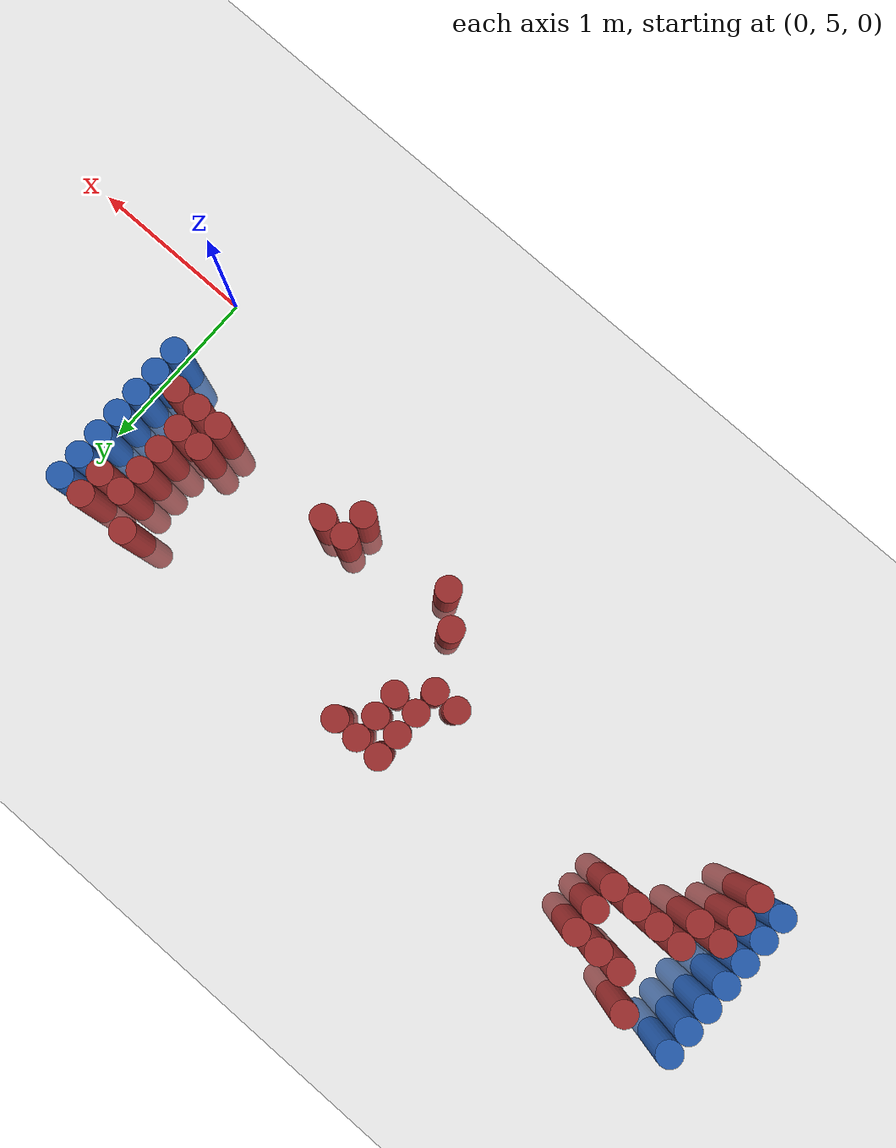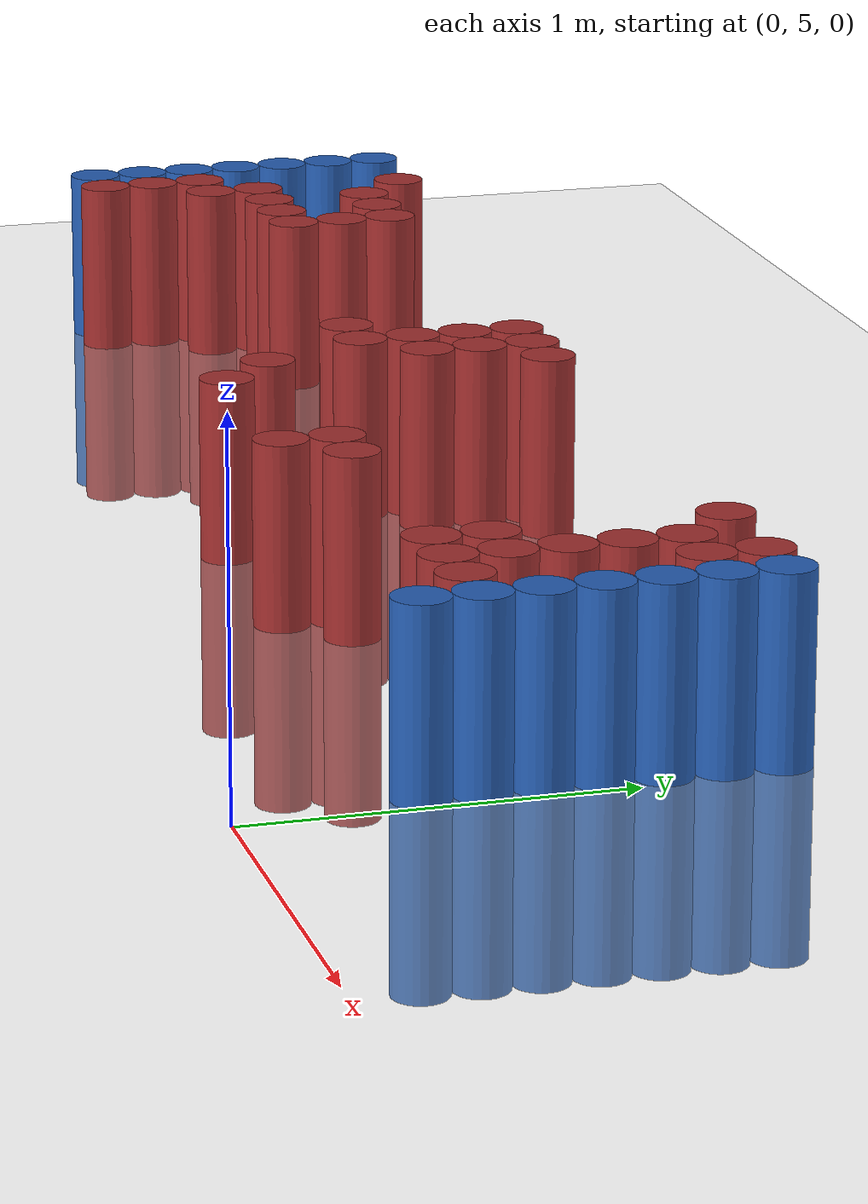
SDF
<sdf version="1.6">
 <world name="default">
  <model name="ground_plane">
   <static>1</static>
   <link name="link">
    <collision name="collision">
     <geometry><plane><normal>0 0 1</normal><size>100 100</size></plane></geometry>
     <surface><friction><ode><mu>100</mu><mu2>50</mu2></ode></friction></surface>
    </collision>
    <visual name="visual">
     <cast_shadows>0</cast_shadows>
     <geometry><plane><normal>0 0 1</normal><size>100 100</size></plane></geometry>
     <material>
      <script><uri>file://media/materials/scripts/gazebo.material</uri><name>Gazebo/Grey</name></script>
     </material>
    </visual>
   </link>
  </model>
  <model name="unit_cylinder_99">
   <static>1</static>
   <pose>-4.425000 5.625000 0.000000 0.000000 0.000000 0.000000</pose>
   <link name="link">
    <inertial>
     <mass>1</mass>
     <inertia><ixx>0.145833</ixx><ixy>0</ixy><ixz>0</ixz><iyy>0.145833</iyy><iyz>0</iyz><izz>0.125</izz></inertia>
    </inertial>
    <collision name="collision">
     <geometry><cylinder><radius>0.075000</radius><length>1</length></cylinder></geometry>
    </collision>
    <visual name="visual">
     <geometry><cylinder><radius>0.075000</radius><length>1</length></cylinder></geometry>
     <material>
      <ambient>0.152000 0.379000 0.720000 1</ambient>
      <diffuse>0.152000 0.379000 0.720000 1</diffuse>
     </material>
     <material>
      <script><name>Gazebo/Grey</name><uri>file://media/materials/scripts/gazebo.material</uri></script>
     </material>
    </visual>
   </link>
  </model>
  <model name="unit_cylinder_100">
   <static>1</static>
   <pose>-4.425000 5.775000 0.000000 0.000000 0.000000 0.000000</pose>
   <link name="link">
    <inertial>
     <mass>1</mass>
     <inertia><ixx>0.145833</ixx><ixy>0</ixy><ixz>0</ixz><iyy>0.145833</iyy><iyz>0</iyz><izz>0.125</izz></inertia>
    </inertial>
    <collision name="collision">
     <geometry><cylinder><radius>0.075000</radius><length>1</length></cylinder></geometry>
    </collision>
    <visual name="visual">
     <geometry><cylinder><radius>0.075000</radius><length>1</length></cylinder></geometry>
     <material>
      <ambient>0.152000 0.379000 0.720000 1</ambient>
      <diffuse>0.152000 0.379000 0.720000 1</diffuse>
     </material>
     <material>
      <script><name>Gazebo/Grey</name><uri>file://media/materials/scripts/gazebo.material</uri></script>
     </material>
    </visual>
   </link>
  </model>
  <model name="unit_cylinder_101">
   <static>1</static>
   <pose>-4.425000 5.925000 0.000000 0.000000 0.000000 0.000000</pose>
   <link name="link">
    <inertial>
     <mass>1</mass>
     <inertia><ixx>0.145833</ixx><ixy>0</ixy><ixz>0</ixz><iyy>0.145833</iyy><iyz>0</iyz><izz>0.125</izz></inertia>
    </inertial>
    <collision name="collision">
     <geometry><cylinder><radius>0.075000</radius><length>1</length></cylinder></geometry>
    </collision>
    <visual name="visual">
     <geometry><cylinder><radius>0.075000</radius><length>1</length></cylinder></geometry>
     <material>
      <ambient>0.152000 0.379000 0.720000 1</ambient>
      <diffuse>0.152000 0.379000 0.720000 1</diffuse>
     </material>
     <material>
      <script><name>Gazebo/Grey</name><uri>file://media/materials/scripts/gazebo.material</uri></script>
     </material>
    </visual>
   </link>
  </model>
  <model name="unit_cylinder_102">
   <static>1</static>
   <pose>-4.425000 6.075000 0.000000 0.000000 0.000000 0.000000</pose>
   <link name="link">
    <inertial>
     <mass>1</mass>
     <inertia><ixx>0.145833</ixx><ixy>0</ixy><ixz>0</ixz><iyy>0.145833</iyy><iyz>0</iyz><izz>0.125</izz></inertia>
    </inertial>
    <collision name="collision">
     <geometry><cylinder><radius>0.075000</radius><length>1</length></cylinder></geometry>
    </collision>
    <visual name="visual">
     <geometry><cylinder><radius>0.075000</radius><length>1</length></cylinder></geometry>
     <material>
      <ambient>0.152000 0.379000 0.720000 1</ambient>
      <diffuse>0.152000 0.379000 0.720000 1</diffuse>
     </material>
     <material>
      <script><name>Gazebo/Grey</name><uri>file://media/materials/scripts/gazebo.material</uri></script>
     </material>
    </visual>
   </link>
  </model>
  <model name="unit_cylinder_103">
   <static>1</static>
   <pose>-4.425000 6.225000 0.000000 0.000000 0.000000 0.000000</pose>
   <link name="link">
    <inertial>
     <mass>1</mass>
     <inertia><ixx>0.145833</ixx><ixy>0</ixy><ixz>0</ixz><iyy>0.145833</iyy><iyz>0</iyz><izz>0.125</izz></inertia>
    </inertial>
    <collision name="collision">
     <geometry><cylinder><radius>0.075000</radius><length>1</length></cylinder></geometry>
    </collision>
    <visual name="visual">
     <geometry><cylinder><radius>0.075000</radius><length>1</length></cylinder></geometry>
     <material>
      <ambient>0.152000 0.379000 0.720000 1</ambient>
      <diffuse>0.152000 0.379000 0.720000 1</diffuse>
     </material>
     <material>
      <script><name>Gazebo/Grey</name><uri>file://media/materials/scripts/gazebo.material</uri></script>
     </material>
    </visual>
   </link>
  </model>
  <model name="unit_cylinder_104">
   <static>1</static>
   <pose>-4.425000 6.375000 0.000000 0.000000 0.000000 0.000000</pose>
   <link name="link">
    <inertial>
     <mass>1</mass>
     <inertia><ixx>0.145833</ixx><ixy>0</ixy><ixz>0</ixz><iyy>0.145833</iyy><iyz>0</iyz><izz>0.125</izz></inertia>
    </inertial>
    <collision name="collision">
     <geometry><cylinder><radius>0.075000</radius><length>1</length></cylinder></geometry>
    </collision>
    <visual name="visual">
     <geometry><cylinder><radius>0.075000</radius><length>1</length></cylinder></geometry>
     <material>
      <ambient>0.152000 0.379000 0.720000 1</ambient>
      <diffuse>0.152000 0.379000 0.720000 1</diffuse>
     </material>
     <material>
      <script><name>Gazebo/Grey</name><uri>file://media/materials/scripts/gazebo.material</uri></script>
     </material>
    </visual>
   </link>
  </model>
  <model name="unit_cylinder_105">
   <static>1</static>
   <pose>-4.425000 6.525000 0.000000 0.000000 0.000000 0.000000</pose>
   <link name="link">
    <inertial>
     <mass>1</mass>
     <inertia><ixx>0.145833</ixx><ixy>0</ixy><ixz>0</ixz><iyy>0.145833</iyy><iyz>0</iyz><izz>0.125</izz></inertia>
    </inertial>
    <collision name="collision">
     <geometry><cylinder><radius>0.075000</radius><length>1</length></cylinder></geometry>
    </collision>
    <visual name="visual">
     <geometry><cylinder><radius>0.075000</radius><length>1</length></cylinder></geometry>
     <material>
      <ambient>0.152000 0.379000 0.720000 1</ambient>
      <diffuse>0.152000 0.379000 0.720000 1</diffuse>
     </material>
     <material>
      <script><name>Gazebo/Grey</name><uri>file://media/materials/scripts/gazebo.material</uri></script>
     </material>
    </visual>
   </link>
  </model>
  <model name="unit_cylinder_128">
   <static>1</static>
   <pose>-4.275000 5.625000 0.000000 0.000000 0.000000 0.000000</pose>
   <link name="link">
    <inertial>
     <mass>1</mass>
     <inertia><ixx>0.145833</ixx><ixy>0</ixy><ixz>0</ixz><iyy>0.145833</iyy><iyz>0</iyz><izz>0.125</izz></inertia>
    </inertial>
    <collision name="collision">
     <geometry><cylinder><radius>0.075000</radius><length>1</length></cylinder></geometry>
    </collision>
    <visual name="visual">
     <geometry><cylinder><radius>0.075000</radius><length>1</length></cylinder></geometry>
     <material>
      <ambient>0.648000 0.192000 0.192000 1</ambient>
      <diffuse>0.648000 0.192000 0.192000 1</diffuse>
     </material>
     <material>
      <script><name>Gazebo/Grey</name><uri>file://media/materials/scripts/gazebo.material</uri></script>
     </material>
    </visual>
   </link>
  </model>
  <model name="unit_cylinder_129">
   <static>1</static>
   <pose>-4.275000 5.775000 0.000000 0.000000 0.000000 0.000000</pose>
   <link name="link">
    <inertial>
     <mass>1</mass>
     <inertia><ixx>0.145833</ixx><ixy>0</ixy><ixz>0</ixz><iyy>0.145833</iyy><iyz>0</iyz><izz>0.125</izz></inertia>
    </inertial>
    <collision name="collision">
     <geometry><cylinder><radius>0.075000</radius><length>1</length></cylinder></geometry>
    </collision>
    <visual name="visual">
     <geometry><cylinder><radius>0.075000</radius><length>1</length></cylinder></geometry>
     <material>
      <ambient>0.648000 0.192000 0.192000 1</ambient>
      <diffuse>0.648000 0.192000 0.192000 1</diffuse>
     </material>
     <material>
      <script><name>Gazebo/Grey</name><uri>file://media/materials/scripts/gazebo.material</uri></script>
     </material>
    </visual>
   </link>
  </model>
  <model name="unit_cylinder_130">
   <static>1</static>
   <pose>-4.275000 5.925000 0.000000 0.000000 0.000000 0.000000</pose>
   <link name="link">
    <inertial>
     <mass>1</mass>
     <inertia><ixx>0.145833</ixx><ixy>0</ixy><ixz>0</ixz><iyy>0.145833</iyy><iyz>0</iyz><izz>0.125</izz></inertia>
    </inertial>
    <collision name="collision">
     <geometry><cylinder><radius>0.075000</radius><length>1</length></cylinder></geometry>
    </collision>
    <visual name="visual">
     <geometry><cylinder><radius>0.075000</radius><length>1</length></cylinder></geometry>
     <material>
      <ambient>0.648000 0.192000 0.192000 1</ambient>
      <diffuse>0.648000 0.192000 0.192000 1</diffuse>
     </material>
     <material>
      <script><name>Gazebo/Grey</name><uri>file://media/materials/scripts/gazebo.material</uri></script>
     </material>
    </visual>
   </link>
  </model>
  <model name="unit_cylinder_144">
   <static>1</static>
   <pose>-4.125000 5.925000 0.000000 0.000000 0.000000 0.000000</pose>
   <link name="link">
    <inertial>
     <mass>1</mass>
     <inertia><ixx>0.145833</ixx><ixy>0</ixy><ixz>0</ixz><iyy>0.145833</iyy><iyz>0</iyz><izz>0.125</izz></inertia>
    </inertial>
    <collision name="collision">
     <geometry><cylinder><radius>0.075000</radius><length>1</length></cylinder></geometry>
    </collision>
    <visual name="visual">
     <geometry><cylinder><radius>0.075000</radius><length>1</length></cylinder></geometry>
     <material>
      <ambient>0.648000 0.192000 0.192000 1</ambient>
      <diffuse>0.648000 0.192000 0.192000 1</diffuse>
     </material>
     <material>
      <script><name>Gazebo/Grey</name><uri>file://media/materials/scripts/gazebo.material</uri></script>
     </material>
    </visual>
   </link>
  </model>
  <model name="unit_cylinder_145">
   <static>1</static>
   <pose>-4.125000 6.075000 0.000000 0.000000 0.000000 0.000000</pose>
   <link name="link">
    <inertial>
     <mass>1</mass>
     <inertia><ixx>0.145833</ixx><ixy>0</ixy><ixz>0</ixz><iyy>0.145833</iyy><iyz>0</iyz><izz>0.125</izz></inertia>
    </inertial>
    <collision name="collision">
     <geometry><cylinder><radius>0.075000</radius><length>1</length></cylinder></geometry>
    </collision>
    <visual name="visual">
     <geometry><cylinder><radius>0.075000</radius><length>1</length></cylinder></geometry>
     <material>
      <ambient>0.648000 0.192000 0.192000 1</ambient>
      <diffuse>0.648000 0.192000 0.192000 1</diffuse>
     </material>
     <material>
      <script><name>Gazebo/Grey</name><uri>file://media/materials/scripts/gazebo.material</uri></script>
     </material>
    </visual>
   </link>
  </model>
  <model name="unit_cylinder_146">
   <static>1</static>
   <pose>-4.125000 6.525000 0.000000 0.000000 0.000000 0.000000</pose>
   <link name="link">
    <inertial>
     <mass>1</mass>
     <inertia><ixx>0.145833</ixx><ixy>0</ixy><ixz>0</ixz><iyy>0.145833</iyy><iyz>0</iyz><izz>0.125</izz></inertia>
    </inertial>
    <collision name="collision">
     <geometry><cylinder><radius>0.075000</radius><length>1</length></cylinder></geometry>
    </collision>
    <visual name="visual">
     <geometry><cylinder><radius>0.075000</radius><length>1</length></cylinder></geometry>
     <material>
      <ambient>0.648000 0.192000 0.192000 1</ambient>
      <diffuse>0.648000 0.192000 0.192000 1</diffuse>
     </material>
     <material>
      <script><name>Gazebo/Grey</name><uri>file://media/materials/scripts/gazebo.material</uri></script>
     </material>
    </visual>
   </link>
  </model>
  <model name="unit_cylinder_152">
   <static>1</static>
   <pose>-3.975000 6.075000 0.000000 0.000000 0.000000 0.000000</pose>
   <link name="link">
    <inertial>
     <mass>1</mass>
     <inertia><ixx>0.145833</ixx><ixy>0</ixy><ixz>0</ixz><iyy>0.145833</iyy><iyz>0</iyz><izz>0.125</izz></inertia>
    </inertial>
    <collision name="collision">
     <geometry><cylinder><radius>0.075000</radius><length>1</length></cylinder></geometry>
    </collision>
    <visual name="visual">
     <geometry><cylinder><radius>0.075000</radius><length>1</length></cylinder></geometry>
     <material>
      <ambient>0.648000 0.192000 0.192000 1</ambient>
      <diffuse>0.648000 0.192000 0.192000 1</diffuse>
     </material>
     <material>
      <script><name>Gazebo/Grey</name><uri>file://media/materials/scripts/gazebo.material</uri></script>
     </material>
    </visual>
   </link>
  </model>
  <model name="unit_cylinder_153">
   <static>1</static>
   <pose>-3.975000 6.375000 0.000000 0.000000 0.000000 0.000000</pose>
   <link name="link">
    <inertial>
     <mass>1</mass>
     <inertia><ixx>0.145833</ixx><ixy>0</ixy><ixz>0</ixz><iyy>0.145833</iyy><iyz>0</iyz><izz>0.125</izz></inertia>
    </inertial>
    <collision name="collision">
     <geometry><cylinder><radius>0.075000</radius><length>1</length></cylinder></geometry>
    </collision>
    <visual name="visual">
     <geometry><cylinder><radius>0.075000</radius><length>1</length></cylinder></geometry>
     <material>
      <ambient>0.648000 0.192000 0.192000 1</ambient>
      <diffuse>0.648000 0.192000 0.192000 1</diffuse>
     </material>
     <material>
      <script><name>Gazebo/Grey</name><uri>file://media/materials/scripts/gazebo.material</uri></script>
     </material>
    </visual>
   </link>
  </model>
  <model name="unit_cylinder_158">
   <static>1</static>
   <pose>-3.825000 6.075000 0.000000 0.000000 0.000000 0.000000</pose>
   <link name="link">
    <inertial>
     <mass>1</mass>
     <inertia><ixx>0.145833</ixx><ixy>0</ixy><ixz>0</ixz><iyy>0.145833</iyy><iyz>0</iyz><izz>0.125</izz></inertia>
    </inertial>
    <collision name="collision">
     <geometry><cylinder><radius>0.075000</radius><length>1</length></cylinder></geometry>
    </collision>
    <visual name="visual">
     <geometry><cylinder><radius>0.075000</radius><length>1</length></cylinder></geometry>
     <material>
      <ambient>0.648000 0.192000 0.192000 1</ambient>
      <diffuse>0.648000 0.192000 0.192000 1</diffuse>
     </material>
     <material>
      <script><name>Gazebo/Grey</name><uri>file://media/materials/scripts/gazebo.material</uri></script>
     </material>
    </visual>
   </link>
  </model>
  <model name="unit_cylinder_159">
   <static>1</static>
   <pose>-3.825000 6.375000 0.000000 0.000000 0.000000 0.000000</pose>
   <link name="link">
    <inertial>
     <mass>1</mass>
     <inertia><ixx>0.145833</ixx><ixy>0</ixy><ixz>0</ixz><iyy>0.145833</iyy><iyz>0</iyz><izz>0.125</izz></inertia>
    </inertial>
    <collision name="collision">
     <geometry><cylinder><radius>0.075000</radius><length>1</length></cylinder></geometry>
    </collision>
    <visual name="visual">
     <geometry><cylinder><radius>0.075000</radius><length>1</length></cylinder></geometry>
     <material>
      <ambient>0.648000 0.192000 0.192000 1</ambient>
      <diffuse>0.648000 0.192000 0.192000 1</diffuse>
     </material>
     <material>
      <script><name>Gazebo/Grey</name><uri>file://media/materials/scripts/gazebo.material</uri></script>
     </material>
    </visual>
   </link>
  </model>
  <model name="unit_cylinder_164">
   <static>1</static>
   <pose>-3.675000 6.075000 0.000000 0.000000 0.000000 0.000000</pose>
   <link name="link">
    <inertial>
     <mass>1</mass>
     <inertia><ixx>0.145833</ixx><ixy>0</ixy><ixz>0</ixz><iyy>0.145833</iyy><iyz>0</iyz><izz>0.125</izz></inertia>
    </inertial>
    <collision name="collision">
     <geometry><cylinder><radius>0.075000</radius><length>1</length></cylinder></geometry>
    </collision>
    <visual name="visual">
     <geometry><cylinder><radius>0.075000</radius><length>1</length></cylinder></geometry>
     <material>
      <ambient>0.648000 0.192000 0.192000 1</ambient>
      <diffuse>0.648000 0.192000 0.192000 1</diffuse>
     </material>
     <material>
      <script><name>Gazebo/Grey</name><uri>file://media/materials/scripts/gazebo.material</uri></script>
     </material>
    </visual>
   </link>
  </model>
  <model name="unit_cylinder_165">
   <static>1</static>
   <pose>-3.675000 6.225000 0.000000 0.000000 0.000000 0.000000</pose>
   <link name="link">
    <inertial>
     <mass>1</mass>
     <inertia><ixx>0.145833</ixx><ixy>0</ixy><ixz>0</ixz><iyy>0.145833</iyy><iyz>0</iyz><izz>0.125</izz></inertia>
    </inertial>
    <collision name="collision">
     <geometry><cylinder><radius>0.075000</radius><length>1</length></cylinder></geometry>
    </collision>
    <visual name="visual">
     <geometry><cylinder><radius>0.075000</radius><length>1</length></cylinder></geometry>
     <material>
      <ambient>0.648000 0.192000 0.192000 1</ambient>
      <diffuse>0.648000 0.192000 0.192000 1</diffuse>
     </material>
     <material>
      <script><name>Gazebo/Grey</name><uri>file://media/materials/scripts/gazebo.material</uri></script>
     </material>
    </visual>
   </link>
  </model>
  <model name="unit_cylinder_166">
   <static>1</static>
   <pose>-3.675000 6.375000 0.000000 0.000000 0.000000 0.000000</pose>
   <link name="link">
    <inertial>
     <mass>1</mass>
     <inertia><ixx>0.145833</ixx><ixy>0</ixy><ixz>0</ixz><iyy>0.145833</iyy><iyz>0</iyz><izz>0.125</izz></inertia>
    </inertial>
    <collision name="collision">
     <geometry><cylinder><radius>0.075000</radius><length>1</length></cylinder></geometry>
    </collision>
    <visual name="visual">
     <geometry><cylinder><radius>0.075000</radius><length>1</length></cylinder></geometry>
     <material>
      <ambient>0.648000 0.192000 0.192000 1</ambient>
      <diffuse>0.648000 0.192000 0.192000 1</diffuse>
     </material>
     <material>
      <script><name>Gazebo/Grey</name><uri>file://media/materials/scripts/gazebo.material</uri></script>
     </material>
    </visual>
   </link>
  </model>
  <model name="unit_cylinder_185">
   <static>1</static>
   <pose>-2.475000 5.925000 0.000000 0.000000 0.000000 0.000000</pose>
   <link name="link">
    <inertial>
     <mass>1</mass>
     <inertia><ixx>0.145833</ixx><ixy>0</ixy><ixz>0</ixz><iyy>0.145833</iyy><iyz>0</iyz><izz>0.125</izz></inertia>
    </inertial>
    <collision name="collision">
     <geometry><cylinder><radius>0.075000</radius><length>1</length></cylinder></geometry>
    </collision>
    <visual name="visual">
     <geometry><cylinder><radius>0.075000</radius><length>1</length></cylinder></geometry>
     <material>
      <ambient>0.648000 0.192000 0.192000 1</ambient>
      <diffuse>0.648000 0.192000 0.192000 1</diffuse>
     </material>
     <material>
      <script><name>Gazebo/Grey</name><uri>file://media/materials/scripts/gazebo.material</uri></script>
     </material>
    </visual>
   </link>
  </model>
  <model name="unit_cylinder_186">
   <static>1</static>
   <pose>-2.325000 5.925000 0.000000 0.000000 0.000000 0.000000</pose>
   <link name="link">
    <inertial>
     <mass>1</mass>
     <inertia><ixx>0.145833</ixx><ixy>0</ixy><ixz>0</ixz><iyy>0.145833</iyy><iyz>0</iyz><izz>0.125</izz></inertia>
    </inertial>
    <collision name="collision">
     <geometry><cylinder><radius>0.075000</radius><length>1</length></cylinder></geometry>
    </collision>
    <visual name="visual">
     <geometry><cylinder><radius>0.075000</radius><length>1</length></cylinder></geometry>
     <material>
      <ambient>0.648000 0.192000 0.192000 1</ambient>
      <diffuse>0.648000 0.192000 0.192000 1</diffuse>
     </material>
     <material>
      <script><name>Gazebo/Grey</name><uri>file://media/materials/scripts/gazebo.material</uri></script>
     </material>
    </visual>
   </link>
  </model>
  <model name="unit_cylinder_187">
   <static>1</static>
   <pose>-2.325000 6.075000 0.000000 0.000000 0.000000 0.000000</pose>
   <link name="link">
    <inertial>
     <mass>1</mass>
     <inertia><ixx>0.145833</ixx><ixy>0</ixy><ixz>0</ixz><iyy>0.145833</iyy><iyz>0</iyz><izz>0.125</izz></inertia>
    </inertial>
    <collision name="collision">
     <geometry><cylinder><radius>0.075000</radius><length>1</length></cylinder></geometry>
    </collision>
    <visual name="visual">
     <geometry><cylinder><radius>0.075000</radius><length>1</length></cylinder></geometry>
     <material>
      <ambient>0.648000 0.192000 0.192000 1</ambient>
      <diffuse>0.648000 0.192000 0.192000 1</diffuse>
     </material>
     <material>
      <script><name>Gazebo/Grey</name><uri>file://media/materials/scripts/gazebo.material</uri></script>
     </material>
    </visual>
   </link>
  </model>
  <model name="unit_cylinder_188">
   <static>1</static>
   <pose>-2.325000 6.225000 0.000000 0.000000 0.000000 0.000000</pose>
   <link name="link">
    <inertial>
     <mass>1</mass>
     <inertia><ixx>0.145833</ixx><ixy>0</ixy><ixz>0</ixz><iyy>0.145833</iyy><iyz>0</iyz><izz>0.125</izz></inertia>
    </inertial>
    <collision name="collision">
     <geometry><cylinder><radius>0.075000</radius><length>1</length></cylinder></geometry>
    </collision>
    <visual name="visual">
     <geometry><cylinder><radius>0.075000</radius><length>1</length></cylinder></geometry>
     <material>
      <ambient>0.648000 0.192000 0.192000 1</ambient>
      <diffuse>0.648000 0.192000 0.192000 1</diffuse>
     </material>
     <material>
      <script><name>Gazebo/Grey</name><uri>file://media/materials/scripts/gazebo.material</uri></script>
     </material>
    </visual>
   </link>
  </model>
  <model name="unit_cylinder_189">
   <static>1</static>
   <pose>-2.325000 6.375000 0.000000 0.000000 0.000000 0.000000</pose>
   <link name="link">
    <inertial>
     <mass>1</mass>
     <inertia><ixx>0.145833</ixx><ixy>0</ixy><ixz>0</ixz><iyy>0.145833</iyy><iyz>0</iyz><izz>0.125</izz></inertia>
    </inertial>
    <collision name="collision">
     <geometry><cylinder><radius>0.075000</radius><length>1</length></cylinder></geometry>
    </collision>
    <visual name="visual">
     <geometry><cylinder><radius>0.075000</radius><length>1</length></cylinder></geometry>
     <material>
      <ambient>0.648000 0.192000 0.192000 1</ambient>
      <diffuse>0.648000 0.192000 0.192000 1</diffuse>
     </material>
     <material>
      <script><name>Gazebo/Grey</name><uri>file://media/materials/scripts/gazebo.material</uri></script>
     </material>
    </visual>
   </link>
  </model>
  <model name="unit_cylinder_193">
   <static>1</static>
   <pose>-2.175000 5.625000 0.000000 0.000000 0.000000 0.000000</pose>
   <link name="link">
    <inertial>
     <mass>1</mass>
     <inertia><ixx>0.145833</ixx><ixy>0</ixy><ixz>0</ixz><iyy>0.145833</iyy><iyz>0</iyz><izz>0.125</izz></inertia>
    </inertial>
    <collision name="collision">
     <geometry><cylinder><radius>0.075000</radius><length>1</length></cylinder></geometry>
    </collision>
    <visual name="visual">
     <geometry><cylinder><radius>0.075000</radius><length>1</length></cylinder></geometry>
     <material>
      <ambient>0.648000 0.192000 0.192000 1</ambient>
      <diffuse>0.648000 0.192000 0.192000 1</diffuse>
     </material>
     <material>
      <script><name>Gazebo/Grey</name><uri>file://media/materials/scripts/gazebo.material</uri></script>
     </material>
    </visual>
   </link>
  </model>
  <model name="unit_cylinder_194">
   <static>1</static>
   <pose>-2.175000 6.075000 0.000000 0.000000 0.000000 0.000000</pose>
   <link name="link">
    <inertial>
     <mass>1</mass>
     <inertia><ixx>0.145833</ixx><ixy>0</ixy><ixz>0</ixz><iyy>0.145833</iyy><iyz>0</iyz><izz>0.125</izz></inertia>
    </inertial>
    <collision name="collision">
     <geometry><cylinder><radius>0.075000</radius><length>1</length></cylinder></geometry>
    </collision>
    <visual name="visual">
     <geometry><cylinder><radius>0.075000</radius><length>1</length></cylinder></geometry>
     <material>
      <ambient>0.648000 0.192000 0.192000 1</ambient>
      <diffuse>0.648000 0.192000 0.192000 1</diffuse>
     </material>
     <material>
      <script><name>Gazebo/Grey</name><uri>file://media/materials/scripts/gazebo.material</uri></script>
     </material>
    </visual>
   </link>
  </model>
  <model name="unit_cylinder_195">
   <static>1</static>
   <pose>-2.175000 6.225000 0.000000 0.000000 0.000000 0.000000</pose>
   <link name="link">
    <inertial>
     <mass>1</mass>
     <inertia><ixx>0.145833</ixx><ixy>0</ixy><ixz>0</ixz><iyy>0.145833</iyy><iyz>0</iyz><izz>0.125</izz></inertia>
    </inertial>
    <collision name="collision">
     <geometry><cylinder><radius>0.075000</radius><length>1</length></cylinder></geometry>
    </collision>
    <visual name="visual">
     <geometry><cylinder><radius>0.075000</radius><length>1</length></cylinder></geometry>
     <material>
      <ambient>0.648000 0.192000 0.192000 1</ambient>
      <diffuse>0.648000 0.192000 0.192000 1</diffuse>
     </material>
     <material>
      <script><name>Gazebo/Grey</name><uri>file://media/materials/scripts/gazebo.material</uri></script>
     </material>
    </visual>
   </link>
  </model>
  <model name="unit_cylinder_196">
   <static>1</static>
   <pose>-2.175000 6.375000 0.000000 0.000000 0.000000 0.000000</pose>
   <link name="link">
    <inertial>
     <mass>1</mass>
     <inertia><ixx>0.145833</ixx><ixy>0</ixy><ixz>0</ixz><iyy>0.145833</iyy><iyz>0</iyz><izz>0.125</izz></inertia>
    </inertial>
    <collision name="collision">
     <geometry><cylinder><radius>0.075000</radius><length>1</length></cylinder></geometry>
    </collision>
    <visual name="visual">
     <geometry><cylinder><radius>0.075000</radius><length>1</length></cylinder></geometry>
     <material>
      <ambient>0.648000 0.192000 0.192000 1</ambient>
      <diffuse>0.648000 0.192000 0.192000 1</diffuse>
     </material>
     <material>
      <script><name>Gazebo/Grey</name><uri>file://media/materials/scripts/gazebo.material</uri></script>
     </material>
    </visual>
   </link>
  </model>
  <model name="unit_cylinder_200">
   <static>1</static>
   <pose>-2.025000 5.475000 0.000000 0.000000 0.000000 0.000000</pose>
   <link name="link">
    <inertial>
     <mass>1</mass>
     <inertia><ixx>0.145833</ixx><ixy>0</ixy><ixz>0</ixz><iyy>0.145833</iyy><iyz>0</iyz><izz>0.125</izz></inertia>
    </inertial>
    <collision name="collision">
     <geometry><cylinder><radius>0.075000</radius><length>1</length></cylinder></geometry>
    </collision>
    <visual name="visual">
     <geometry><cylinder><radius>0.075000</radius><length>1</length></cylinder></geometry>
     <material>
      <ambient>0.648000 0.192000 0.192000 1</ambient>
      <diffuse>0.648000 0.192000 0.192000 1</diffuse>
     </material>
     <material>
      <script><name>Gazebo/Grey</name><uri>file://media/materials/scripts/gazebo.material</uri></script>
     </material>
    </visual>
   </link>
  </model>
  <model name="unit_cylinder_201">
   <static>1</static>
   <pose>-2.025000 6.375000 0.000000 0.000000 0.000000 0.000000</pose>
   <link name="link">
    <inertial>
     <mass>1</mass>
     <inertia><ixx>0.145833</ixx><ixy>0</ixy><ixz>0</ixz><iyy>0.145833</iyy><iyz>0</iyz><izz>0.125</izz></inertia>
    </inertial>
    <collision name="collision">
     <geometry><cylinder><radius>0.075000</radius><length>1</length></cylinder></geometry>
    </collision>
    <visual name="visual">
     <geometry><cylinder><radius>0.075000</radius><length>1</length></cylinder></geometry>
     <material>
      <ambient>0.648000 0.192000 0.192000 1</ambient>
      <diffuse>0.648000 0.192000 0.192000 1</diffuse>
     </material>
     <material>
      <script><name>Gazebo/Grey</name><uri>file://media/materials/scripts/gazebo.material</uri></script>
     </material>
    </visual>
   </link>
  </model>
  <model name="unit_cylinder_223">
   <static>1</static>
   <pose>-1.425000 5.475000 0.000000 0.000000 0.000000 0.000000</pose>
   <link name="link">
    <inertial>
     <mass>1</mass>
     <inertia><ixx>0.145833</ixx><ixy>0</ixy><ixz>0</ixz><iyy>0.145833</iyy><iyz>0</iyz><izz>0.125</izz></inertia>
    </inertial>
    <collision name="collision">
     <geometry><cylinder><radius>0.075000</radius><length>1</length></cylinder></geometry>
    </collision>
    <visual name="visual">
     <geometry><cylinder><radius>0.075000</radius><length>1</length></cylinder></geometry>
     <material>
      <ambient>0.648000 0.192000 0.192000 1</ambient>
      <diffuse>0.648000 0.192000 0.192000 1</diffuse>
     </material>
     <material>
      <script><name>Gazebo/Grey</name><uri>file://media/materials/scripts/gazebo.material</uri></script>
     </material>
    </visual>
   </link>
  </model>
  <model name="unit_cylinder_224">
   <static>1</static>
   <pose>-1.425000 5.625000 0.000000 0.000000 0.000000 0.000000</pose>
   <link name="link">
    <inertial>
     <mass>1</mass>
     <inertia><ixx>0.145833</ixx><ixy>0</ixy><ixz>0</ixz><iyy>0.145833</iyy><iyz>0</iyz><izz>0.125</izz></inertia>
    </inertial>
    <collision name="collision">
     <geometry><cylinder><radius>0.075000</radius><length>1</length></cylinder></geometry>
    </collision>
    <visual name="visual">
     <geometry><cylinder><radius>0.075000</radius><length>1</length></cylinder></geometry>
     <material>
      <ambient>0.648000 0.192000 0.192000 1</ambient>
      <diffuse>0.648000 0.192000 0.192000 1</diffuse>
     </material>
     <material>
      <script><name>Gazebo/Grey</name><uri>file://media/materials/scripts/gazebo.material</uri></script>
     </material>
    </visual>
   </link>
  </model>
  <model name="unit_cylinder_232">
   <static>1</static>
   <pose>-1.275000 5.625000 0.000000 0.000000 0.000000 0.000000</pose>
   <link name="link">
    <inertial>
     <mass>1</mass>
     <inertia><ixx>0.145833</ixx><ixy>0</ixy><ixz>0</ixz><iyy>0.145833</iyy><iyz>0</iyz><izz>0.125</izz></inertia>
    </inertial>
    <collision name="collision">
     <geometry><cylinder><radius>0.075000</radius><length>1</length></cylinder></geometry>
    </collision>
    <visual name="visual">
     <geometry><cylinder><radius>0.075000</radius><length>1</length></cylinder></geometry>
     <material>
      <ambient>0.648000 0.192000 0.192000 1</ambient>
      <diffuse>0.648000 0.192000 0.192000 1</diffuse>
     </material>
     <material>
      <script><name>Gazebo/Grey</name><uri>file://media/materials/scripts/gazebo.material</uri></script>
     </material>
    </visual>
   </link>
  </model>
  <model name="unit_cylinder_256">
   <static>1</static>
   <pose>-0.525000 5.625000 0.000000 0.000000 0.000000 0.000000</pose>
   <link name="link">
    <inertial>
     <mass>1</mass>
     <inertia><ixx>0.145833</ixx><ixy>0</ixy><ixz>0</ixz><iyy>0.145833</iyy><iyz>0</iyz><izz>0.125</izz></inertia>
    </inertial>
    <collision name="collision">
     <geometry><cylinder><radius>0.075000</radius><length>1</length></cylinder></geometry>
    </collision>
    <visual name="visual">
     <geometry><cylinder><radius>0.075000</radius><length>1</length></cylinder></geometry>
     <material>
      <ambient>0.648000 0.192000 0.192000 1</ambient>
      <diffuse>0.648000 0.192000 0.192000 1</diffuse>
     </material>
     <material>
      <script><name>Gazebo/Grey</name><uri>file://media/materials/scripts/gazebo.material</uri></script>
     </material>
    </visual>
   </link>
  </model>
  <model name="unit_cylinder_257">
   <static>1</static>
   <pose>-0.525000 5.775000 0.000000 0.000000 0.000000 0.000000</pose>
   <link name="link">
    <inertial>
     <mass>1</mass>
     <inertia><ixx>0.145833</ixx><ixy>0</ixy><ixz>0</ixz><iyy>0.145833</iyy><iyz>0</iyz><izz>0.125</izz></inertia>
    </inertial>
    <collision name="collision">
     <geometry><cylinder><radius>0.075000</radius><length>1</length></cylinder></geometry>
    </collision>
    <visual name="visual">
     <geometry><cylinder><radius>0.075000</radius><length>1</length></cylinder></geometry>
     <material>
      <ambient>0.648000 0.192000 0.192000 1</ambient>
      <diffuse>0.648000 0.192000 0.192000 1</diffuse>
     </material>
     <material>
      <script><name>Gazebo/Grey</name><uri>file://media/materials/scripts/gazebo.material</uri></script>
     </material>
    </visual>
   </link>
  </model>
  <model name="unit_cylinder_258">
   <static>1</static>
   <pose>-0.525000 6.375000 0.000000 0.000000 0.000000 0.000000</pose>
   <link name="link">
    <inertial>
     <mass>1</mass>
     <inertia><ixx>0.145833</ixx><ixy>0</ixy><ixz>0</ixz><iyy>0.145833</iyy><iyz>0</iyz><izz>0.125</izz></inertia>
    </inertial>
    <collision name="collision">
     <geometry><cylinder><radius>0.075000</radius><length>1</length></cylinder></geometry>
    </collision>
    <visual name="visual">
     <geometry><cylinder><radius>0.075000</radius><length>1</length></cylinder></geometry>
     <material>
      <ambient>0.648000 0.192000 0.192000 1</ambient>
      <diffuse>0.648000 0.192000 0.192000 1</diffuse>
     </material>
     <material>
      <script><name>Gazebo/Grey</name><uri>file://media/materials/scripts/gazebo.material</uri></script>
     </material>
    </visual>
   </link>
  </model>
  <model name="unit_cylinder_260">
   <static>1</static>
   <pose>-0.375000 5.625000 0.000000 0.000000 0.000000 0.000000</pose>
   <link name="link">
    <inertial>
     <mass>1</mass>
     <inertia><ixx>0.145833</ixx><ixy>0</ixy><ixz>0</ixz><iyy>0.145833</iyy><iyz>0</iyz><izz>0.125</izz></inertia>
    </inertial>
    <collision name="collision">
     <geometry><cylinder><radius>0.075000</radius><length>1</length></cylinder></geometry>
    </collision>
    <visual name="visual">
     <geometry><cylinder><radius>0.075000</radius><length>1</length></cylinder></geometry>
     <material>
      <ambient>0.648000 0.192000 0.192000 1</ambient>
      <diffuse>0.648000 0.192000 0.192000 1</diffuse>
     </material>
     <material>
      <script><name>Gazebo/Grey</name><uri>file://media/materials/scripts/gazebo.material</uri></script>
     </material>
    </visual>
   </link>
  </model>
  <model name="unit_cylinder_261">
   <static>1</static>
   <pose>-0.375000 5.775000 0.000000 0.000000 0.000000 0.000000</pose>
   <link name="link">
    <inertial>
     <mass>1</mass>
     <inertia><ixx>0.145833</ixx><ixy>0</ixy><ixz>0</ixz><iyy>0.145833</iyy><iyz>0</iyz><izz>0.125</izz></inertia>
    </inertial>
    <collision name="collision">
     <geometry><cylinder><radius>0.075000</radius><length>1</length></cylinder></geometry>
    </collision>
    <visual name="visual">
     <geometry><cylinder><radius>0.075000</radius><length>1</length></cylinder></geometry>
     <material>
      <ambient>0.648000 0.192000 0.192000 1</ambient>
      <diffuse>0.648000 0.192000 0.192000 1</diffuse>
     </material>
     <material>
      <script><name>Gazebo/Grey</name><uri>file://media/materials/scripts/gazebo.material</uri></script>
     </material>
    </visual>
   </link>
  </model>
  <model name="unit_cylinder_262">
   <static>1</static>
   <pose>-0.375000 5.925000 0.000000 0.000000 0.000000 0.000000</pose>
   <link name="link">
    <inertial>
     <mass>1</mass>
     <inertia><ixx>0.145833</ixx><ixy>0</ixy><ixz>0</ixz><iyy>0.145833</iyy><iyz>0</iyz><izz>0.125</izz></inertia>
    </inertial>
    <collision name="collision">
     <geometry><cylinder><radius>0.075000</radius><length>1</length></cylinder></geometry>
    </collision>
    <visual name="visual">
     <geometry><cylinder><radius>0.075000</radius><length>1</length></cylinder></geometry>
     <material>
      <ambient>0.648000 0.192000 0.192000 1</ambient>
      <diffuse>0.648000 0.192000 0.192000 1</diffuse>
     </material>
     <material>
      <script><name>Gazebo/Grey</name><uri>file://media/materials/scripts/gazebo.material</uri></script>
     </material>
    </visual>
   </link>
  </model>
  <model name="unit_cylinder_263">
   <static>1</static>
   <pose>-0.375000 6.075000 0.000000 0.000000 0.000000 0.000000</pose>
   <link name="link">
    <inertial>
     <mass>1</mass>
     <inertia><ixx>0.145833</ixx><ixy>0</ixy><ixz>0</ixz><iyy>0.145833</iyy><iyz>0</iyz><izz>0.125</izz></inertia>
    </inertial>
    <collision name="collision">
     <geometry><cylinder><radius>0.075000</radius><length>1</length></cylinder></geometry>
    </collision>
    <visual name="visual">
     <geometry><cylinder><radius>0.075000</radius><length>1</length></cylinder></geometry>
     <material>
      <ambient>0.648000 0.192000 0.192000 1</ambient>
      <diffuse>0.648000 0.192000 0.192000 1</diffuse>
     </material>
     <material>
      <script><name>Gazebo/Grey</name><uri>file://media/materials/scripts/gazebo.material</uri></script>
     </material>
    </visual>
   </link>
  </model>
  <model name="unit_cylinder_264">
   <static>1</static>
   <pose>-0.375000 6.225000 0.000000 0.000000 0.000000 0.000000</pose>
   <link name="link">
    <inertial>
     <mass>1</mass>
     <inertia><ixx>0.145833</ixx><ixy>0</ixy><ixz>0</ixz><iyy>0.145833</iyy><iyz>0</iyz><izz>0.125</izz></inertia>
    </inertial>
    <collision name="collision">
     <geometry><cylinder><radius>0.075000</radius><length>1</length></cylinder></geometry>
    </collision>
    <visual name="visual">
     <geometry><cylinder><radius>0.075000</radius><length>1</length></cylinder></geometry>
     <material>
      <ambient>0.648000 0.192000 0.192000 1</ambient>
      <diffuse>0.648000 0.192000 0.192000 1</diffuse>
     </material>
     <material>
      <script><name>Gazebo/Grey</name><uri>file://media/materials/scripts/gazebo.material</uri></script>
     </material>
    </visual>
   </link>
  </model>
  <model name="unit_cylinder_265">
   <static>1</static>
   <pose>-0.225000 5.625000 0.000000 0.000000 0.000000 0.000000</pose>
   <link name="link">
    <inertial>
     <mass>1</mass>
     <inertia><ixx>0.145833</ixx><ixy>0</ixy><ixz>0</ixz><iyy>0.145833</iyy><iyz>0</iyz><izz>0.125</izz></inertia>
    </inertial>
    <collision name="collision">
     <geometry><cylinder><radius>0.075000</radius><length>1</length></cylinder></geometry>
    </collision>
    <visual name="visual">
     <geometry><cylinder><radius>0.075000</radius><length>1</length></cylinder></geometry>
     <material>
      <ambient>0.648000 0.192000 0.192000 1</ambient>
      <diffuse>0.648000 0.192000 0.192000 1</diffuse>
     </material>
     <material>
      <script><name>Gazebo/Grey</name><uri>file://media/materials/scripts/gazebo.material</uri></script>
     </material>
    </visual>
   </link>
  </model>
  <model name="unit_cylinder_266">
   <static>1</static>
   <pose>-0.225000 6.225000 0.000000 0.000000 0.000000 0.000000</pose>
   <link name="link">
    <inertial>
     <mass>1</mass>
     <inertia><ixx>0.145833</ixx><ixy>0</ixy><ixz>0</ixz><iyy>0.145833</iyy><iyz>0</iyz><izz>0.125</izz></inertia>
    </inertial>
    <collision name="collision">
     <geometry><cylinder><radius>0.075000</radius><length>1</length></cylinder></geometry>
    </collision>
    <visual name="visual">
     <geometry><cylinder><radius>0.075000</radius><length>1</length></cylinder></geometry>
     <material>
      <ambient>0.648000 0.192000 0.192000 1</ambient>
      <diffuse>0.648000 0.192000 0.192000 1</diffuse>
     </material>
     <material>
      <script><name>Gazebo/Grey</name><uri>file://media/materials/scripts/gazebo.material</uri></script>
     </material>
    </visual>
   </link>
  </model>
  <model name="unit_cylinder_267">
   <static>1</static>
   <pose>-0.225000 6.375000 0.000000 0.000000 0.000000 0.000000</pose>
   <link name="link">
    <inertial>
     <mass>1</mass>
     <inertia><ixx>0.145833</ixx><ixy>0</ixy><ixz>0</ixz><iyy>0.145833</iyy><iyz>0</iyz><izz>0.125</izz></inertia>
    </inertial>
    <collision name="collision">
     <geometry><cylinder><radius>0.075000</radius><length>1</length></cylinder></geometry>
    </collision>
    <visual name="visual">
     <geometry><cylinder><radius>0.075000</radius><length>1</length></cylinder></geometry>
     <material>
      <ambient>0.648000 0.192000 0.192000 1</ambient>
      <diffuse>0.648000 0.192000 0.192000 1</diffuse>
     </material>
     <material>
      <script><name>Gazebo/Grey</name><uri>file://media/materials/scripts/gazebo.material</uri></script>
     </material>
    </visual>
   </link>
  </model>
  <model name="unit_cylinder_283">
   <static>1</static>
   <pose>-0.075000 5.475000 0.000000 0.000000 0.000000 0.000000</pose>
   <link name="link">
    <inertial>
     <mass>1</mass>
     <inertia><ixx>0.145833</ixx><ixy>0</ixy><ixz>0</ixz><iyy>0.145833</iyy><iyz>0</iyz><izz>0.125</izz></inertia>
    </inertial>
    <collision name="collision">
     <geometry><cylinder><radius>0.075000</radius><length>1</length></cylinder></geometry>
    </collision>
    <visual name="visual">
     <geometry><cylinder><radius>0.075000</radius><length>1</length></cylinder></geometry>
     <material>
      <ambient>0.152000 0.379000 0.720000 1</ambient>
      <diffuse>0.152000 0.379000 0.720000 1</diffuse>
     </material>
     <material>
      <script><name>Gazebo/Grey</name><uri>file://media/materials/scripts/gazebo.material</uri></script>
     </material>
    </visual>
   </link>
  </model>
  <model name="unit_cylinder_284">
   <static>1</static>
   <pose>-0.075000 5.625000 0.000000 0.000000 0.000000 0.000000</pose>
   <link name="link">
    <inertial>
     <mass>1</mass>
     <inertia><ixx>0.145833</ixx><ixy>0</ixy><ixz>0</ixz><iyy>0.145833</iyy><iyz>0</iyz><izz>0.125</izz></inertia>
    </inertial>
    <collision name="collision">
     <geometry><cylinder><radius>0.075000</radius><length>1</length></cylinder></geometry>
    </collision>
    <visual name="visual">
     <geometry><cylinder><radius>0.075000</radius><length>1</length></cylinder></geometry>
     <material>
      <ambient>0.152000 0.379000 0.720000 1</ambient>
      <diffuse>0.152000 0.379000 0.720000 1</diffuse>
     </material>
     <material>
      <script><name>Gazebo/Grey</name><uri>file://media/materials/scripts/gazebo.material</uri></script>
     </material>
    </visual>
   </link>
  </model>
  <model name="unit_cylinder_285">
   <static>1</static>
   <pose>-0.075000 5.775000 0.000000 0.000000 0.000000 0.000000</pose>
   <link name="link">
    <inertial>
     <mass>1</mass>
     <inertia><ixx>0.145833</ixx><ixy>0</ixy><ixz>0</ixz><iyy>0.145833</iyy><iyz>0</iyz><izz>0.125</izz></inertia>
    </inertial>
    <collision name="collision">
     <geometry><cylinder><radius>0.075000</radius><length>1</length></cylinder></geometry>
    </collision>
    <visual name="visual">
     <geometry><cylinder><radius>0.075000</radius><length>1</length></cylinder></geometry>
     <material>
      <ambient>0.152000 0.379000 0.720000 1</ambient>
      <diffuse>0.152000 0.379000 0.720000 1</diffuse>
     </material>
     <material>
      <script><name>Gazebo/Grey</name><uri>file://media/materials/scripts/gazebo.material</uri></script>
     </material>
    </visual>
   </link>
  </model>
  <model name="unit_cylinder_286">
   <static>1</static>
   <pose>-0.075000 5.925000 0.000000 0.000000 0.000000 0.000000</pose>
   <link name="link">
    <inertial>
     <mass>1</mass>
     <inertia><ixx>0.145833</ixx><ixy>0</ixy><ixz>0</ixz><iyy>0.145833</iyy><iyz>0</iyz><izz>0.125</izz></inertia>
    </inertial>
    <collision name="collision">
     <geometry><cylinder><radius>0.075000</radius><length>1</length></cylinder></geometry>
    </collision>
    <visual name="visual">
     <geometry><cylinder><radius>0.075000</radius><length>1</length></cylinder></geometry>
     <material>
      <ambient>0.152000 0.379000 0.720000 1</ambient>
      <diffuse>0.152000 0.379000 0.720000 1</diffuse>
     </material>
     <material>
      <script><name>Gazebo/Grey</name><uri>file://media/materials/scripts/gazebo.material</uri></script>
     </material>
    </visual>
   </link>
  </model>
  <model name="unit_cylinder_287">
   <static>1</static>
   <pose>-0.075000 6.075000 0.000000 0.000000 0.000000 0.000000</pose>
   <link name="link">
    <inertial>
     <mass>1</mass>
     <inertia><ixx>0.145833</ixx><ixy>0</ixy><ixz>0</ixz><iyy>0.145833</iyy><iyz>0</iyz><izz>0.125</izz></inertia>
    </inertial>
    <collision name="collision">
     <geometry><cylinder><radius>0.075000</radius><length>1</length></cylinder></geometry>
    </collision>
    <visual name="visual">
     <geometry><cylinder><radius>0.075000</radius><length>1</length></cylinder></geometry>
     <material>
      <ambient>0.152000 0.379000 0.720000 1</ambient>
      <diffuse>0.152000 0.379000 0.720000 1</diffuse>
     </material>
     <material>
      <script><name>Gazebo/Grey</name><uri>file://media/materials/scripts/gazebo.material</uri></script>
     </material>
    </visual>
   </link>
  </model>
  <model name="unit_cylinder_288">
   <static>1</static>
   <pose>-0.075000 6.225000 0.000000 0.000000 0.000000 0.000000</pose>
   <link name="link">
    <inertial>
     <mass>1</mass>
     <inertia><ixx>0.145833</ixx><ixy>0</ixy><ixz>0</ixz><iyy>0.145833</iyy><iyz>0</iyz><izz>0.125</izz></inertia>
    </inertial>
    <collision name="collision">
     <geometry><cylinder><radius>0.075000</radius><length>1</length></cylinder></geometry>
    </collision>
    <visual name="visual">
     <geometry><cylinder><radius>0.075000</radius><length>1</length></cylinder></geometry>
     <material>
      <ambient>0.152000 0.379000 0.720000 1</ambient>
      <diffuse>0.152000 0.379000 0.720000 1</diffuse>
     </material>
     <material>
      <script><name>Gazebo/Grey</name><uri>file://media/materials/scripts/gazebo.material</uri></script>
     </material>
    </visual>
   </link>
  </model>
  <model name="unit_cylinder_289">
   <static>1</static>
   <pose>-0.075000 6.375000 0.000000 0.000000 0.000000 0.000000</pose>
   <link name="link">
    <inertial>
     <mass>1</mass>
     <inertia><ixx>0.145833</ixx><ixy>0</ixy><ixz>0</ixz><iyy>0.145833</iyy><iyz>0</iyz><izz>0.125</izz></inertia>
    </inertial>
    <collision name="collision">
     <geometry><cylinder><radius>0.075000</radius><length>1</length></cylinder></geometry>
    </collision>
    <visual name="visual">
     <geometry><cylinder><radius>0.075000</radius><length>1</length></cylinder></geometry>
     <material>
      <ambient>0.152000 0.379000 0.720000 1</ambient>
      <diffuse>0.152000 0.379000 0.720000 1</diffuse>
     </material>
     <material>
      <script><name>Gazebo/Grey</name><uri>file://media/materials/scripts/gazebo.material</uri></script>
     </material>
    </visual>
   </link>
  </model>
 </world>
</sdf>
